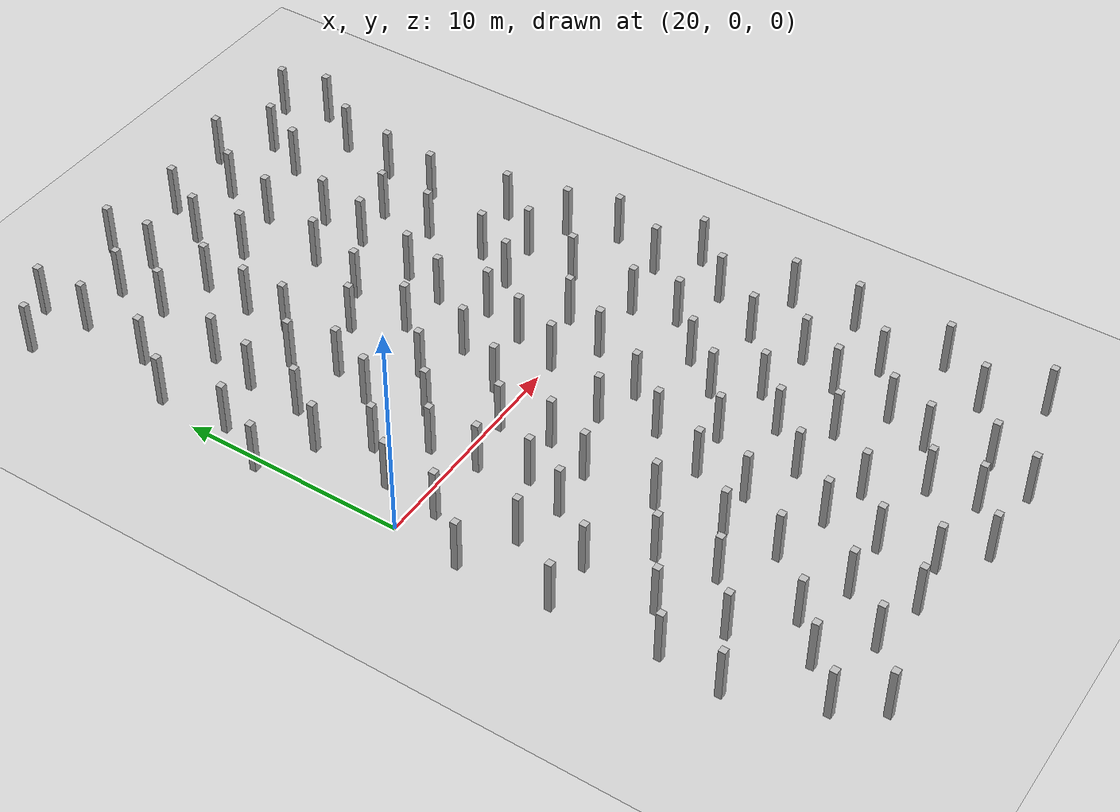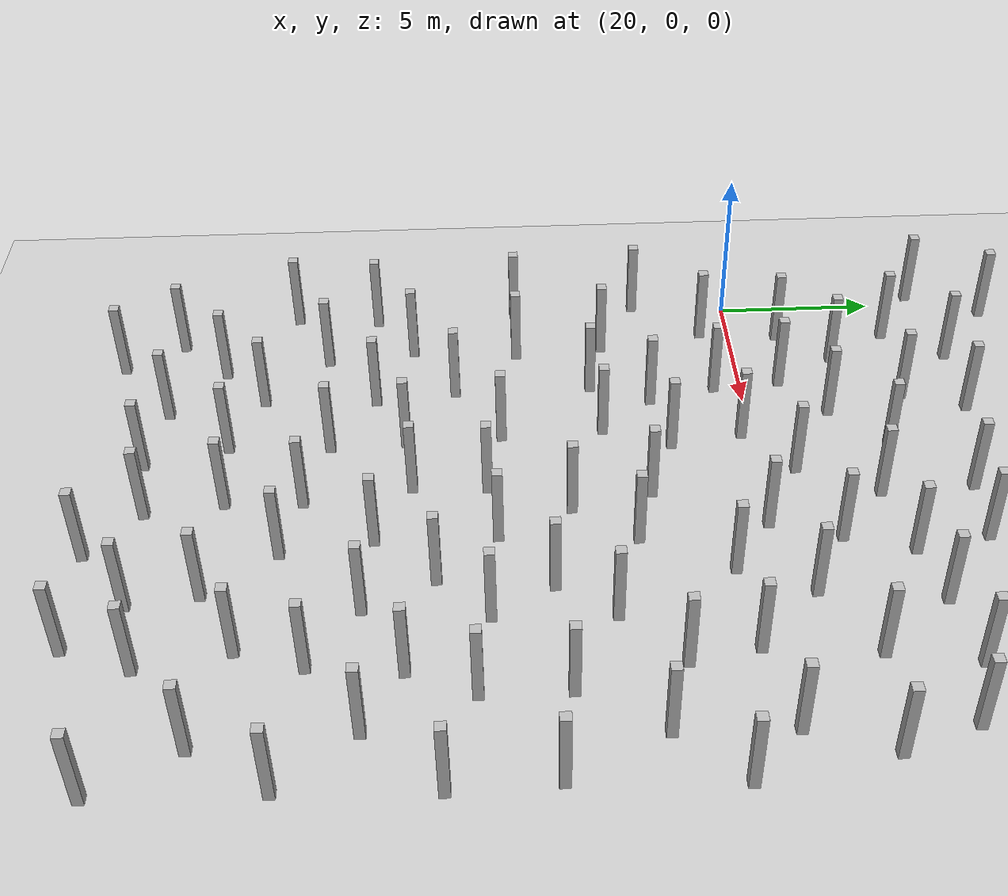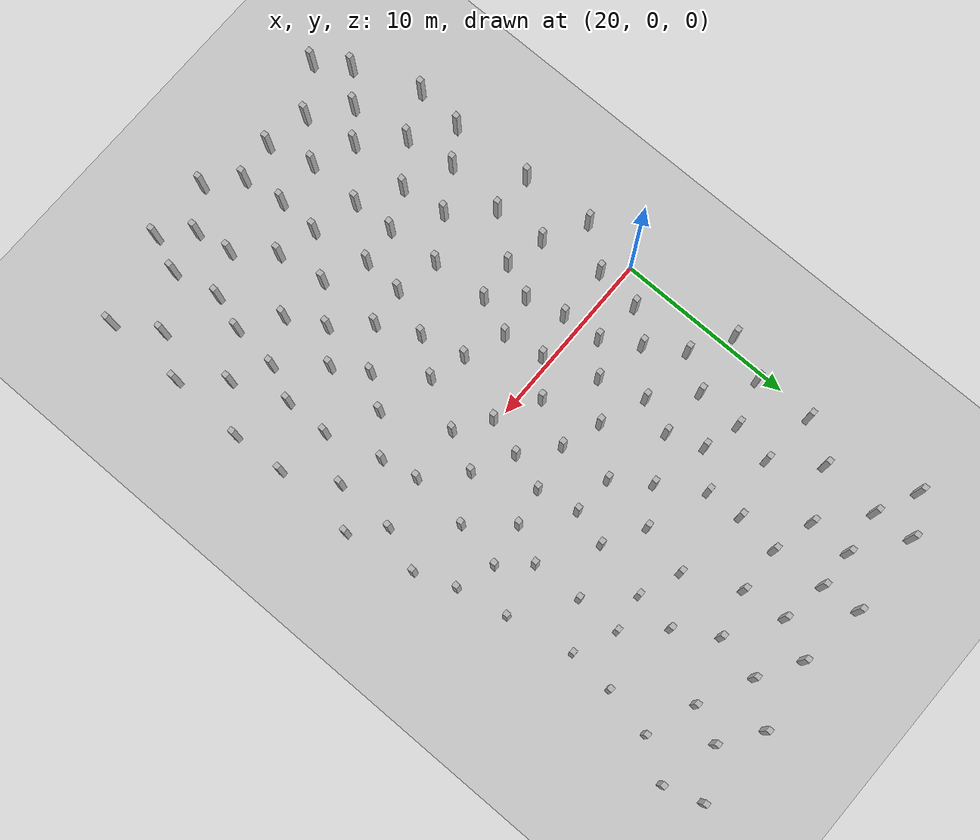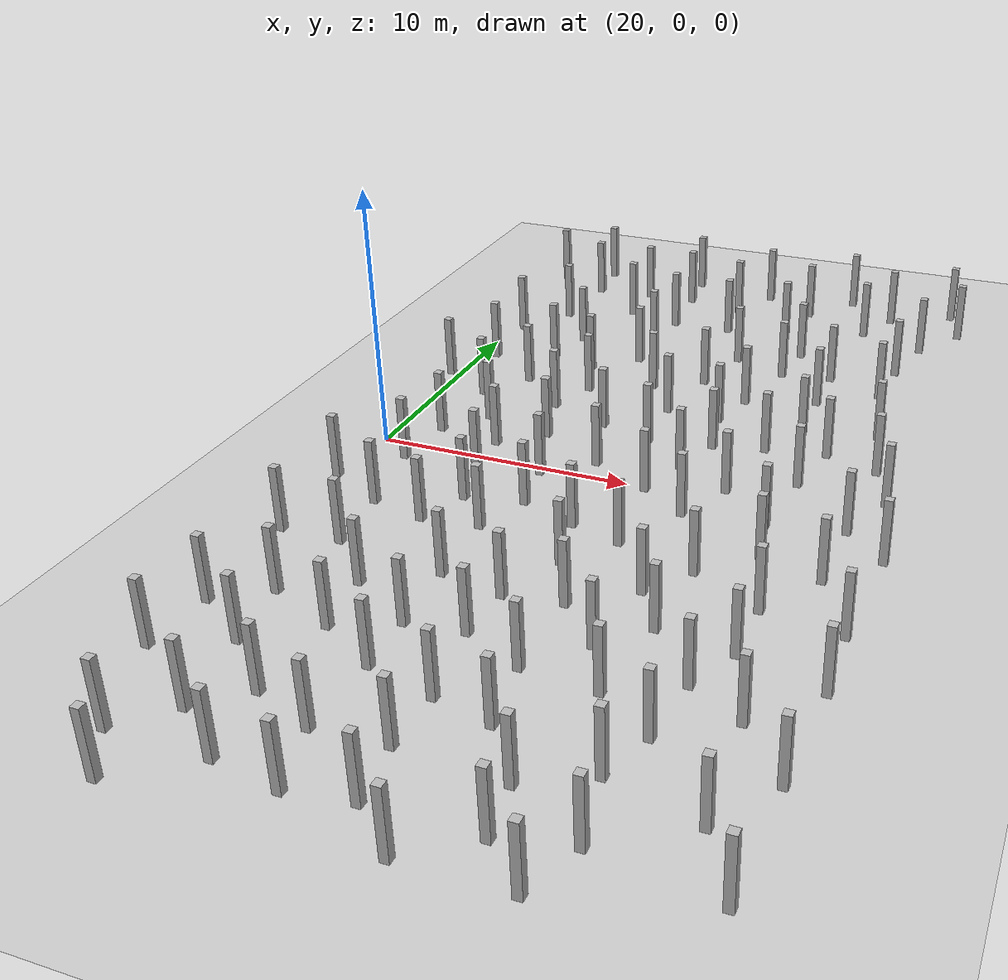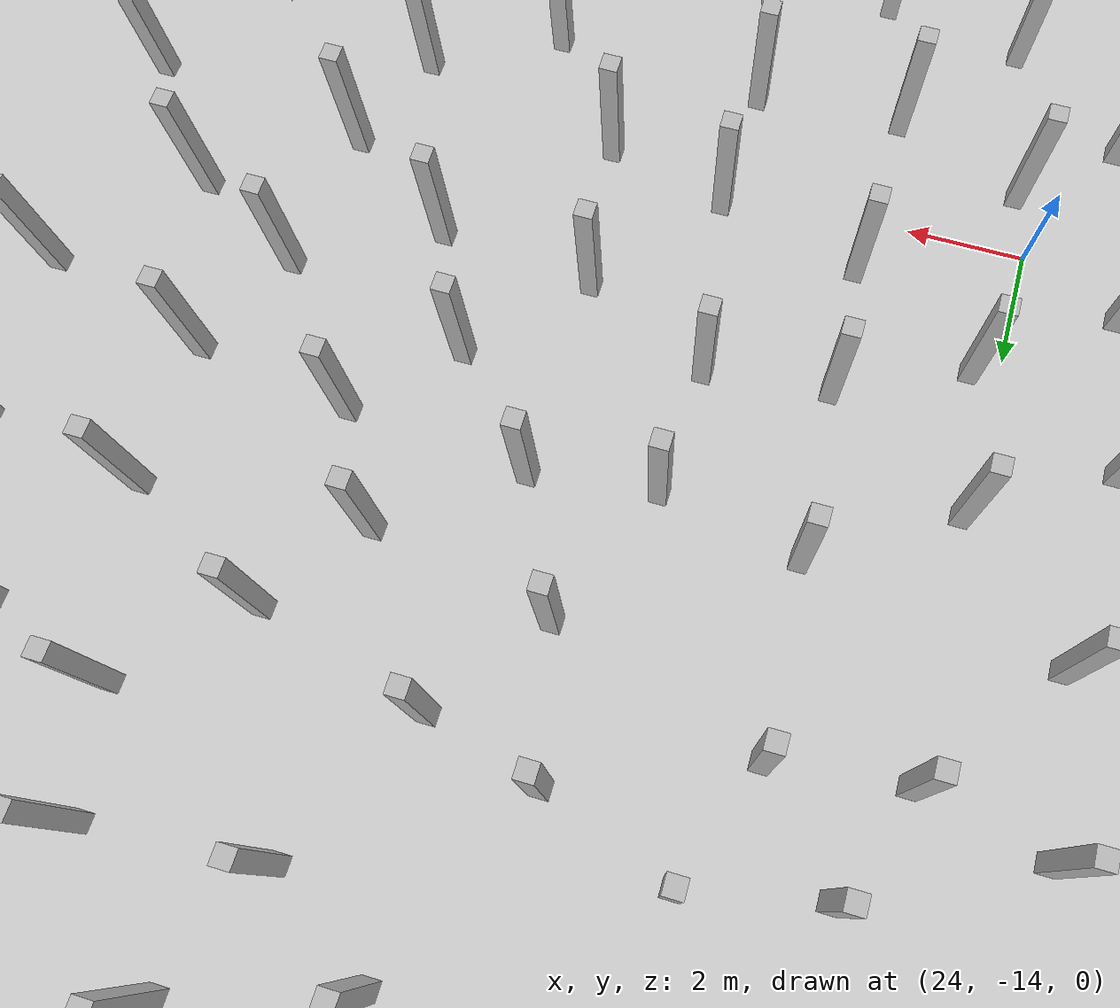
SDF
<sdf version="1.6">
 <world name="random_boxes_100x40_600">
  <include><uri>model://sun</uri></include>
  <include><uri>model://ground_plane</uri></include>
  <model name="box_0">
   <static>true</static>
   <pose>20.616 8.737 1.250 0 0 0</pose>
   <link name="link">
    <visual name="visual"><geometry><box><size>0.3 0.3 2.5</size></box></geometry></visual>
    <collision name="collision"><geometry><box><size>0.3 0.3 2.5</size></box></geometry></collision>
   </link>
  </model>
  <model name="box_1">
   <static>true</static>
   <pose>23.067 9.463 1.250 0 0 0</pose>
   <link name="link">
    <visual name="visual"><geometry><box><size>0.3 0.3 2.5</size></box></geometry></visual>
    <collision name="collision"><geometry><box><size>0.3 0.3 2.5</size></box></geometry></collision>
   </link>
  </model>
  <model name="box_2">
   <static>true</static>
   <pose>19.566 6.437 1.250 0 0 0</pose>
   <link name="link">
    <visual name="visual"><geometry><box><size>0.3 0.3 2.5</size></box></geometry></visual>
    <collision name="collision"><geometry><box><size>0.3 0.3 2.5</size></box></geometry></collision>
   </link>
  </model>
  <model name="box_3">
   <static>true</static>
   <pose>21.735 5.121 1.250 0 0 0</pose>
   <link name="link">
    <visual name="visual"><geometry><box><size>0.3 0.3 2.5</size></box></geometry></visual>
    <collision name="collision"><geometry><box><size>0.3 0.3 2.5</size></box></geometry></collision>
   </link>
  </model>
  <model name="box_4">
   <static>true</static>
   <pose>22.974 6.956 1.250 0 0 0</pose>
   <link name="link">
    <visual name="visual"><geometry><box><size>0.3 0.3 2.5</size></box></geometry></visual>
    <collision name="collision"><geometry><box><size>0.3 0.3 2.5</size></box></geometry></collision>
   </link>
  </model>
  <model name="box_5">
   <static>true</static>
   <pose>25.010 8.894 1.250 0 0 0</pose>
   <link name="link">
    <visual name="visual"><geometry><box><size>0.3 0.3 2.5</size></box></geometry></visual>
    <collision name="collision"><geometry><box><size>0.3 0.3 2.5</size></box></geometry></collision>
   </link>
  </model>
  <model name="box_7">
   <static>true</static>
   <pose>23.516 11.668 1.250 0 0 0</pose>
   <link name="link">
    <visual name="visual"><geometry><box><size>0.3 0.3 2.5</size></box></geometry></visual>
    <collision name="collision"><geometry><box><size>0.3 0.3 2.5</size></box></geometry></collision>
   </link>
  </model>
  <model name="box_8">
   <static>true</static>
   <pose>26.659 10.443 1.250 0 0 0</pose>
   <link name="link">
    <visual name="visual"><geometry><box><size>0.3 0.3 2.5</size></box></geometry></visual>
    <collision name="collision"><geometry><box><size>0.3 0.3 2.5</size></box></geometry></collision>
   </link>
  </model>
  <model name="box_11">
   <static>true</static>
   <pose>25.702 6.966 1.250 0 0 0</pose>
   <link name="link">
    <visual name="visual"><geometry><box><size>0.3 0.3 2.5</size></box></geometry></visual>
    <collision name="collision"><geometry><box><size>0.3 0.3 2.5</size></box></geometry></collision>
   </link>
  </model>
  <model name="box_12">
   <static>true</static>
   <pose>21.830 14.069 1.250 0 0 0</pose>
   <link name="link">
    <visual name="visual"><geometry><box><size>0.3 0.3 2.5</size></box></geometry></visual>
    <collision name="collision"><geometry><box><size>0.3 0.3 2.5</size></box></geometry></collision>
   </link>
  </model>
  <model name="box_17">
   <static>true</static>
   <pose>28.119 8.132 1.250 0 0 0</pose>
   <link name="link">
    <visual name="visual"><geometry><box><size>0.3 0.3 2.5</size></box></geometry></visual>
    <collision name="collision"><geometry><box><size>0.3 0.3 2.5</size></box></geometry></collision>
   </link>
  </model>
  <model name="box_18">
   <static>true</static>
   <pose>22.969 3.160 1.250 0 0 0</pose>
   <link name="link">
    <visual name="visual"><geometry><box><size>0.3 0.3 2.5</size></box></geometry></visual>
    <collision name="collision"><geometry><box><size>0.3 0.3 2.5</size></box></geometry></collision>
   </link>
  </model>
  <model name="box_19">
   <static>true</static>
   <pose>19.852 18.463 1.250 0 0 0</pose>
   <link name="link">
    <visual name="visual"><geometry><box><size>0.3 0.3 2.5</size></box></geometry></visual>
    <collision name="collision"><geometry><box><size>0.3 0.3 2.5</size></box></geometry></collision>
   </link>
  </model>
  <model name="box_20">
   <static>true</static>
   <pose>20.443 11.930 1.250 0 0 0</pose>
   <link name="link">
    <visual name="visual"><geometry><box><size>0.3 0.3 2.5</size></box></geometry></visual>
    <collision name="collision"><geometry><box><size>0.3 0.3 2.5</size></box></geometry></collision>
   </link>
  </model>
  <model name="box_21">
   <static>true</static>
   <pose>24.533 15.338 1.250 0 0 0</pose>
   <link name="link">
    <visual name="visual"><geometry><box><size>0.3 0.3 2.5</size></box></geometry></visual>
    <collision name="collision"><geometry><box><size>0.3 0.3 2.5</size></box></geometry></collision>
   </link>
  </model>
  <model name="box_22">
   <static>true</static>
   <pose>26.589 12.455 1.250 0 0 0</pose>
   <link name="link">
    <visual name="visual"><geometry><box><size>0.3 0.3 2.5</size></box></geometry></visual>
    <collision name="collision"><geometry><box><size>0.3 0.3 2.5</size></box></geometry></collision>
   </link>
  </model>
  <model name="box_24">
   <static>true</static>
   <pose>26.821 14.765 1.250 0 0 0</pose>
   <link name="link">
    <visual name="visual"><geometry><box><size>0.3 0.3 2.5</size></box></geometry></visual>
    <collision name="collision"><geometry><box><size>0.3 0.3 2.5</size></box></geometry></collision>
   </link>
  </model>
  <model name="box_31">
   <static>true</static>
   <pose>29.321 14.858 1.250 0 0 0</pose>
   <link name="link">
    <visual name="visual"><geometry><box><size>0.3 0.3 2.5</size></box></geometry></visual>
    <collision name="collision"><geometry><box><size>0.3 0.3 2.5</size></box></geometry></collision>
   </link>
  </model>
  <model name="box_32">
   <static>true</static>
   <pose>22.106 17.415 1.250 0 0 0</pose>
   <link name="link">
    <visual name="visual"><geometry><box><size>0.3 0.3 2.5</size></box></geometry></visual>
    <collision name="collision"><geometry><box><size>0.3 0.3 2.5</size></box></geometry></collision>
   </link>
  </model>
  <model name="box_36">
   <static>true</static>
   <pose>21.923 19.605 1.250 0 0 0</pose>
   <link name="link">
    <visual name="visual"><geometry><box><size>0.3 0.3 2.5</size></box></geometry></visual>
    <collision name="collision"><geometry><box><size>0.3 0.3 2.5</size></box></geometry></collision>
   </link>
  </model>
  <model name="box_38">
   <static>true</static>
   <pose>31.835 15.458 1.250 0 0 0</pose>
   <link name="link">
    <visual name="visual"><geometry><box><size>0.3 0.3 2.5</size></box></geometry></visual>
    <collision name="collision"><geometry><box><size>0.3 0.3 2.5</size></box></geometry></collision>
   </link>
  </model>
  <model name="box_39">
   <static>true</static>
   <pose>24.149 1.246 1.250 0 0 0</pose>
   <link name="link">
    <visual name="visual"><geometry><box><size>0.3 0.3 2.5</size></box></geometry></visual>
    <collision name="collision"><geometry><box><size>0.3 0.3 2.5</size></box></geometry></collision>
   </link>
  </model>
  <model name="box_40">
   <static>true</static>
   <pose>32.335 17.937 1.250 0 0 0</pose>
   <link name="link">
    <visual name="visual"><geometry><box><size>0.3 0.3 2.5</size></box></geometry></visual>
    <collision name="collision"><geometry><box><size>0.3 0.3 2.5</size></box></geometry></collision>
   </link>
  </model>
  <model name="box_42">
   <static>true</static>
   <pose>24.341 -0.869 1.250 0 0 0</pose>
   <link name="link">
    <visual name="visual"><geometry><box><size>0.3 0.3 2.5</size></box></geometry></visual>
    <collision name="collision"><geometry><box><size>0.3 0.3 2.5</size></box></geometry></collision>
   </link>
  </model>
  <model name="box_46">
   <static>true</static>
   <pose>29.089 17.269 1.250 0 0 0</pose>
   <link name="link">
    <visual name="visual"><geometry><box><size>0.3 0.3 2.5</size></box></geometry></visual>
    <collision name="collision"><geometry><box><size>0.3 0.3 2.5</size></box></geometry></collision>
   </link>
  </model>
  <model name="box_49">
   <static>true</static>
   <pose>24.993 5.047 1.250 0 0 0</pose>
   <link name="link">
    <visual name="visual"><geometry><box><size>0.3 0.3 2.5</size></box></geometry></visual>
    <collision name="collision"><geometry><box><size>0.3 0.3 2.5</size></box></geometry></collision>
   </link>
  </model>
  <model name="box_50">
   <static>true</static>
   <pose>21.379 -0.948 1.250 0 0 0</pose>
   <link name="link">
    <visual name="visual"><geometry><box><size>0.3 0.3 2.5</size></box></geometry></visual>
    <collision name="collision"><geometry><box><size>0.3 0.3 2.5</size></box></geometry></collision>
   </link>
  </model>
  <model name="box_53">
   <static>true</static>
   <pose>33.130 13.301 1.250 0 0 0</pose>
   <link name="link">
    <visual name="visual"><geometry><box><size>0.3 0.3 2.5</size></box></geometry></visual>
    <collision name="collision"><geometry><box><size>0.3 0.3 2.5</size></box></geometry></collision>
   </link>
  </model>
  <model name="box_54">
   <static>true</static>
   <pose>30.680 11.943 1.250 0 0 0</pose>
   <link name="link">
    <visual name="visual"><geometry><box><size>0.3 0.3 2.5</size></box></geometry></visual>
    <collision name="collision"><geometry><box><size>0.3 0.3 2.5</size></box></geometry></collision>
   </link>
  </model>
  <model name="box_56">
   <static>true</static>
   <pose>30.006 9.267 1.250 0 0 0</pose>
   <link name="link">
    <visual name="visual"><geometry><box><size>0.3 0.3 2.5</size></box></geometry></visual>
    <collision name="collision"><geometry><box><size>0.3 0.3 2.5</size></box></geometry></collision>
   </link>
  </model>
  <model name="box_69">
   <static>true</static>
   <pose>32.147 8.051 1.250 0 0 0</pose>
   <link name="link">
    <visual name="visual"><geometry><box><size>0.3 0.3 2.5</size></box></geometry></visual>
    <collision name="collision"><geometry><box><size>0.3 0.3 2.5</size></box></geometry></collision>
   </link>
  </model>
  <model name="box_73">
   <static>true</static>
   <pose>34.911 11.383 1.250 0 0 0</pose>
   <link name="link">
    <visual name="visual"><geometry><box><size>0.3 0.3 2.5</size></box></geometry></visual>
    <collision name="collision"><geometry><box><size>0.3 0.3 2.5</size></box></geometry></collision>
   </link>
  </model>
  <model name="box_77">
   <static>true</static>
   <pose>26.706 -0.330 1.250 0 0 0</pose>
   <link name="link">
    <visual name="visual"><geometry><box><size>0.3 0.3 2.5</size></box></geometry></visual>
    <collision name="collision"><geometry><box><size>0.3 0.3 2.5</size></box></geometry></collision>
   </link>
  </model>
  <model name="box_81">
   <static>true</static>
   <pose>28.405 1.069 1.250 0 0 0</pose>
   <link name="link">
    <visual name="visual"><geometry><box><size>0.3 0.3 2.5</size></box></geometry></visual>
    <collision name="collision"><geometry><box><size>0.3 0.3 2.5</size></box></geometry></collision>
   </link>
  </model>
  <model name="box_84">
   <static>true</static>
   <pose>34.910 8.945 1.250 0 0 0</pose>
   <link name="link">
    <visual name="visual"><geometry><box><size>0.3 0.3 2.5</size></box></geometry></visual>
    <collision name="collision"><geometry><box><size>0.3 0.3 2.5</size></box></geometry></collision>
   </link>
  </model>
  <model name="box_89">
   <static>true</static>
   <pose>27.470 4.108 1.250 0 0 0</pose>
   <link name="link">
    <visual name="visual"><geometry><box><size>0.3 0.3 2.5</size></box></geometry></visual>
    <collision name="collision"><geometry><box><size>0.3 0.3 2.5</size></box></geometry></collision>
   </link>
  </model>
  <model name="box_90">
   <static>true</static>
   <pose>32.875 11.088 1.250 0 0 0</pose>
   <link name="link">
    <visual name="visual"><geometry><box><size>0.3 0.3 2.5</size></box></geometry></visual>
    <collision name="collision"><geometry><box><size>0.3 0.3 2.5</size></box></geometry></collision>
   </link>
  </model>
  <model name="box_91">
   <static>true</static>
   <pose>35.016 6.193 1.250 0 0 0</pose>
   <link name="link">
    <visual name="visual"><geometry><box><size>0.3 0.3 2.5</size></box></geometry></visual>
    <collision name="collision"><geometry><box><size>0.3 0.3 2.5</size></box></geometry></collision>
   </link>
  </model>
  <model name="box_93">
   <static>true</static>
   <pose>37.881 6.780 1.250 0 0 0</pose>
   <link name="link">
    <visual name="visual"><geometry><box><size>0.3 0.3 2.5</size></box></geometry></visual>
    <collision name="collision"><geometry><box><size>0.3 0.3 2.5</size></box></geometry></collision>
   </link>
  </model>
  <model name="box_94">
   <static>true</static>
   <pose>29.433 6.229 1.250 0 0 0</pose>
   <link name="link">
    <visual name="visual"><geometry><box><size>0.3 0.3 2.5</size></box></geometry></visual>
    <collision name="collision"><geometry><box><size>0.3 0.3 2.5</size></box></geometry></collision>
   </link>
  </model>
  <model name="box_97">
   <static>true</static>
   <pose>27.077 -2.532 1.250 0 0 0</pose>
   <link name="link">
    <visual name="visual"><geometry><box><size>0.3 0.3 2.5</size></box></geometry></visual>
    <collision name="collision"><geometry><box><size>0.3 0.3 2.5</size></box></geometry></collision>
   </link>
  </model>
  <model name="box_100">
   <static>true</static>
   <pose>26.641 17.713 1.250 0 0 0</pose>
   <link name="link">
    <visual name="visual"><geometry><box><size>0.3 0.3 2.5</size></box></geometry></visual>
    <collision name="collision"><geometry><box><size>0.3 0.3 2.5</size></box></geometry></collision>
   </link>
  </model>
  <model name="box_102">
   <static>true</static>
   <pose>33.962 19.959 1.250 0 0 0</pose>
   <link name="link">
    <visual name="visual"><geometry><box><size>0.3 0.3 2.5</size></box></geometry></visual>
    <collision name="collision"><geometry><box><size>0.3 0.3 2.5</size></box></geometry></collision>
   </link>
  </model>
  <model name="box_104">
   <static>true</static>
   <pose>29.586 3.407 1.250 0 0 0</pose>
   <link name="link">
    <visual name="visual"><geometry><box><size>0.3 0.3 2.5</size></box></geometry></visual>
    <collision name="collision"><geometry><box><size>0.3 0.3 2.5</size></box></geometry></collision>
   </link>
  </model>
  <model name="box_107">
   <static>true</static>
   <pose>37.163 10.414 1.250 0 0 0</pose>
   <link name="link">
    <visual name="visual"><geometry><box><size>0.3 0.3 2.5</size></box></geometry></visual>
    <collision name="collision"><geometry><box><size>0.3 0.3 2.5</size></box></geometry></collision>
   </link>
  </model>
  <model name="box_109">
   <static>true</static>
   <pose>38.416 4.005 1.250 0 0 0</pose>
   <link name="link">
    <visual name="visual"><geometry><box><size>0.3 0.3 2.5</size></box></geometry></visual>
    <collision name="collision"><geometry><box><size>0.3 0.3 2.5</size></box></geometry></collision>
   </link>
  </model>
  <model name="box_113">
   <static>true</static>
   <pose>30.771 -0.128 1.250 0 0 0</pose>
   <link name="link">
    <visual name="visual"><geometry><box><size>0.3 0.3 2.5</size></box></geometry></visual>
    <collision name="collision"><geometry><box><size>0.3 0.3 2.5</size></box></geometry></collision>
   </link>
  </model>
  <model name="box_118">
   <static>true</static>
   <pose>32.072 3.877 1.250 0 0 0</pose>
   <link name="link">
    <visual name="visual"><geometry><box><size>0.3 0.3 2.5</size></box></geometry></visual>
    <collision name="collision"><geometry><box><size>0.3 0.3 2.5</size></box></geometry></collision>
   </link>
  </model>
  <model name="box_119">
   <static>true</static>
   <pose>20.149 -11.694 1.250 0 0 0</pose>
   <link name="link">
    <visual name="visual"><geometry><box><size>0.3 0.3 2.5</size></box></geometry></visual>
    <collision name="collision"><geometry><box><size>0.3 0.3 2.5</size></box></geometry></collision>
   </link>
  </model>
  <model name="box_124">
   <static>true</static>
   <pose>33.573 0.771 1.250 0 0 0</pose>
   <link name="link">
    <visual name="visual"><geometry><box><size>0.3 0.3 2.5</size></box></geometry></visual>
    <collision name="collision"><geometry><box><size>0.3 0.3 2.5</size></box></geometry></collision>
   </link>
  </model>
  <model name="box_126">
   <static>true</static>
   <pose>37.349 12.912 1.250 0 0 0</pose>
   <link name="link">
    <visual name="visual"><geometry><box><size>0.3 0.3 2.5</size></box></geometry></visual>
    <collision name="collision"><geometry><box><size>0.3 0.3 2.5</size></box></geometry></collision>
   </link>
  </model>
  <model name="box_132">
   <static>true</static>
   <pose>37.889 15.621 1.250 0 0 0</pose>
   <link name="link">
    <visual name="visual"><geometry><box><size>0.3 0.3 2.5</size></box></geometry></visual>
    <collision name="collision"><geometry><box><size>0.3 0.3 2.5</size></box></geometry></collision>
   </link>
  </model>
  <model name="box_140">
   <static>true</static>
   <pose>35.896 2.123 1.250 0 0 0</pose>
   <link name="link">
    <visual name="visual"><geometry><box><size>0.3 0.3 2.5</size></box></geometry></visual>
    <collision name="collision"><geometry><box><size>0.3 0.3 2.5</size></box></geometry></collision>
   </link>
  </model>
  <model name="box_145">
   <static>true</static>
   <pose>35.193 16.567 1.250 0 0 0</pose>
   <link name="link">
    <visual name="visual"><geometry><box><size>0.3 0.3 2.5</size></box></geometry></visual>
    <collision name="collision"><geometry><box><size>0.3 0.3 2.5</size></box></geometry></collision>
   </link>
  </model>
  <model name="box_150">
   <static>true</static>
   <pose>31.610 6.099 1.250 0 0 0</pose>
   <link name="link">
    <visual name="visual"><geometry><box><size>0.3 0.3 2.5</size></box></geometry></visual>
    <collision name="collision"><geometry><box><size>0.3 0.3 2.5</size></box></geometry></collision>
   </link>
  </model>
  <model name="box_154">
   <static>true</static>
   <pose>26.292 -4.584 1.250 0 0 0</pose>
   <link name="link">
    <visual name="visual"><geometry><box><size>0.3 0.3 2.5</size></box></geometry></visual>
    <collision name="collision"><geometry><box><size>0.3 0.3 2.5</size></box></geometry></collision>
   </link>
  </model>
  <model name="box_156">
   <static>true</static>
   <pose>39.220 17.744 1.250 0 0 0</pose>
   <link name="link">
    <visual name="visual"><geometry><box><size>0.3 0.3 2.5</size></box></geometry></visual>
    <collision name="collision"><geometry><box><size>0.3 0.3 2.5</size></box></geometry></collision>
   </link>
  </model>
  <model name="box_161">
   <static>true</static>
   <pose>19.896 -14.367 1.250 0 0 0</pose>
   <link name="link">
    <visual name="visual"><geometry><box><size>0.3 0.3 2.5</size></box></geometry></visual>
    <collision name="collision"><geometry><box><size>0.3 0.3 2.5</size></box></geometry></collision>
   </link>
  </model>
  <model name="box_162">
   <static>true</static>
   <pose>21.645 1.568 1.250 0 0 0</pose>
   <link name="link">
    <visual name="visual"><geometry><box><size>0.3 0.3 2.5</size></box></geometry></visual>
    <collision name="collision"><geometry><box><size>0.3 0.3 2.5</size></box></geometry></collision>
   </link>
  </model>
  <model name="box_163">
   <static>true</static>
   <pose>29.272 -3.357 1.250 0 0 0</pose>
   <link name="link">
    <visual name="visual"><geometry><box><size>0.3 0.3 2.5</size></box></geometry></visual>
    <collision name="collision"><geometry><box><size>0.3 0.3 2.5</size></box></geometry></collision>
   </link>
  </model>
  <model name="box_168">
   <static>true</static>
   <pose>19.723 -3.090 1.250 0 0 0</pose>
   <link name="link">
    <visual name="visual"><geometry><box><size>0.3 0.3 2.5</size></box></geometry></visual>
    <collision name="collision"><geometry><box><size>0.3 0.3 2.5</size></box></geometry></collision>
   </link>
  </model>
  <model name="box_174">
   <static>true</static>
   <pose>39.207 1.836 1.250 0 0 0</pose>
   <link name="link">
    <visual name="visual"><geometry><box><size>0.3 0.3 2.5</size></box></geometry></visual>
    <collision name="collision"><geometry><box><size>0.3 0.3 2.5</size></box></geometry></collision>
   </link>
  </model>
  <model name="box_175">
   <static>true</static>
   <pose>36.367 4.686 1.250 0 0 0</pose>
   <link name="link">
    <visual name="visual"><geometry><box><size>0.3 0.3 2.5</size></box></geometry></visual>
    <collision name="collision"><geometry><box><size>0.3 0.3 2.5</size></box></geometry></collision>
   </link>
  </model>
  <model name="box_177">
   <static>true</static>
   <pose>21.999 -4.325 1.250 0 0 0</pose>
   <link name="link">
    <visual name="visual"><geometry><box><size>0.3 0.3 2.5</size></box></geometry></visual>
    <collision name="collision"><geometry><box><size>0.3 0.3 2.5</size></box></geometry></collision>
   </link>
  </model>
  <model name="box_180">
   <static>true</static>
   <pose>22.332 -13.213 1.250 0 0 0</pose>
   <link name="link">
    <visual name="visual"><geometry><box><size>0.3 0.3 2.5</size></box></geometry></visual>
    <collision name="collision"><geometry><box><size>0.3 0.3 2.5</size></box></geometry></collision>
   </link>
  </model>
  <model name="box_182">
   <static>true</static>
   <pose>38.330 -0.523 1.250 0 0 0</pose>
   <link name="link">
    <visual name="visual"><geometry><box><size>0.3 0.3 2.5</size></box></geometry></visual>
    <collision name="collision"><geometry><box><size>0.3 0.3 2.5</size></box></geometry></collision>
   </link>
  </model>
  <model name="box_183">
   <static>true</static>
   <pose>36.052 18.489 1.250 0 0 0</pose>
   <link name="link">
    <visual name="visual"><geometry><box><size>0.3 0.3 2.5</size></box></geometry></visual>
    <collision name="collision"><geometry><box><size>0.3 0.3 2.5</size></box></geometry></collision>
   </link>
  </model>
  <model name="box_185">
   <static>true</static>
   <pose>24.543 17.644 1.250 0 0 0</pose>
   <link name="link">
    <visual name="visual"><geometry><box><size>0.3 0.3 2.5</size></box></geometry></visual>
    <collision name="collision"><geometry><box><size>0.3 0.3 2.5</size></box></geometry></collision>
   </link>
  </model>
  <model name="box_187">
   <static>true</static>
   <pose>24.352 -15.121 1.250 0 0 0</pose>
   <link name="link">
    <visual name="visual"><geometry><box><size>0.3 0.3 2.5</size></box></geometry></visual>
    <collision name="collision"><geometry><box><size>0.3 0.3 2.5</size></box></geometry></collision>
   </link>
  </model>
  <model name="box_189">
   <static>true</static>
   <pose>19.935 -7.115 1.250 0 0 0</pose>
   <link name="link">
    <visual name="visual"><geometry><box><size>0.3 0.3 2.5</size></box></geometry></visual>
    <collision name="collision"><geometry><box><size>0.3 0.3 2.5</size></box></geometry></collision>
   </link>
  </model>
  <model name="box_192">
   <static>true</static>
   <pose>29.847 -5.750 1.250 0 0 0</pose>
   <link name="link">
    <visual name="visual"><geometry><box><size>0.3 0.3 2.5</size></box></geometry></visual>
    <collision name="collision"><geometry><box><size>0.3 0.3 2.5</size></box></geometry></collision>
   </link>
  </model>
  <model name="box_194">
   <static>true</static>
   <pose>39.906 -1.976 1.250 0 0 0</pose>
   <link name="link">
    <visual name="visual"><geometry><box><size>0.3 0.3 2.5</size></box></geometry></visual>
    <collision name="collision"><geometry><box><size>0.3 0.3 2.5</size></box></geometry></collision>
   </link>
  </model>
  <model name="box_196">
   <static>true</static>
   <pose>22.817 -16.486 1.250 0 0 0</pose>
   <link name="link">
    <visual name="visual"><geometry><box><size>0.3 0.3 2.5</size></box></geometry></visual>
    <collision name="collision"><geometry><box><size>0.3 0.3 2.5</size></box></geometry></collision>
   </link>
  </model>
  <model name="box_199">
   <static>true</static>
   <pose>21.255 -18.019 1.250 0 0 0</pose>
   <link name="link">
    <visual name="visual"><geometry><box><size>0.3 0.3 2.5</size></box></geometry></visual>
    <collision name="collision"><geometry><box><size>0.3 0.3 2.5</size></box></geometry></collision>
   </link>
  </model>
  <model name="box_204">
   <static>true</static>
   <pose>30.935 -7.922 1.250 0 0 0</pose>
   <link name="link">
    <visual name="visual"><geometry><box><size>0.3 0.3 2.5</size></box></geometry></visual>
    <collision name="collision"><geometry><box><size>0.3 0.3 2.5</size></box></geometry></collision>
   </link>
  </model>
  <model name="box_205">
   <static>true</static>
   <pose>38.255 -3.784 1.250 0 0 0</pose>
   <link name="link">
    <visual name="visual"><geometry><box><size>0.3 0.3 2.5</size></box></geometry></visual>
    <collision name="collision"><geometry><box><size>0.3 0.3 2.5</size></box></geometry></collision>
   </link>
  </model>
  <model name="box_210">
   <static>true</static>
   <pose>24.506 -11.611 1.250 0 0 0</pose>
   <link name="link">
    <visual name="visual"><geometry><box><size>0.3 0.3 2.5</size></box></geometry></visual>
    <collision name="collision"><geometry><box><size>0.3 0.3 2.5</size></box></geometry></collision>
   </link>
  </model>
  <model name="box_211">
   <static>true</static>
   <pose>22.254 -7.123 1.250 0 0 0</pose>
   <link name="link">
    <visual name="visual"><geometry><box><size>0.3 0.3 2.5</size></box></geometry></visual>
    <collision name="collision"><geometry><box><size>0.3 0.3 2.5</size></box></geometry></collision>
   </link>
  </model>
  <model name="box_213">
   <static>true</static>
   <pose>36.804 -6.117 1.250 0 0 0</pose>
   <link name="link">
    <visual name="visual"><geometry><box><size>0.3 0.3 2.5</size></box></geometry></visual>
    <collision name="collision"><geometry><box><size>0.3 0.3 2.5</size></box></geometry></collision>
   </link>
  </model>
  <model name="box_214">
   <static>true</static>
   <pose>26.596 -16.030 1.250 0 0 0</pose>
   <link name="link">
    <visual name="visual"><geometry><box><size>0.3 0.3 2.5</size></box></geometry></visual>
    <collision name="collision"><geometry><box><size>0.3 0.3 2.5</size></box></geometry></collision>
   </link>
  </model>
  <model name="box_216">
   <static>true</static>
   <pose>38.584 19.819 1.250 0 0 0</pose>
   <link name="link">
    <visual name="visual"><geometry><box><size>0.3 0.3 2.5</size></box></geometry></visual>
    <collision name="collision"><geometry><box><size>0.3 0.3 2.5</size></box></geometry></collision>
   </link>
  </model>
  <model name="box_225">
   <static>true</static>
   <pose>35.963 -3.073 1.250 0 0 0</pose>
   <link name="link">
    <visual name="visual"><geometry><box><size>0.3 0.3 2.5</size></box></geometry></visual>
    <collision name="collision"><geometry><box><size>0.3 0.3 2.5</size></box></geometry></collision>
   </link>
  </model>
  <model name="box_226">
   <static>true</static>
   <pose>26.723 -12.938 1.250 0 0 0</pose>
   <link name="link">
    <visual name="visual"><geometry><box><size>0.3 0.3 2.5</size></box></geometry></visual>
    <collision name="collision"><geometry><box><size>0.3 0.3 2.5</size></box></geometry></collision>
   </link>
  </model>
  <model name="box_230">
   <static>true</static>
   <pose>26.630 -10.632 1.250 0 0 0</pose>
   <link name="link">
    <visual name="visual"><geometry><box><size>0.3 0.3 2.5</size></box></geometry></visual>
    <collision name="collision"><geometry><box><size>0.3 0.3 2.5</size></box></geometry></collision>
   </link>
  </model>
  <model name="box_231">
   <static>true</static>
   <pose>27.281 -18.507 1.250 0 0 0</pose>
   <link name="link">
    <visual name="visual"><geometry><box><size>0.3 0.3 2.5</size></box></geometry></visual>
    <collision name="collision"><geometry><box><size>0.3 0.3 2.5</size></box></geometry></collision>
   </link>
  </model>
  <model name="box_233">
   <static>true</static>
   <pose>32.984 -6.409 1.250 0 0 0</pose>
   <link name="link">
    <visual name="visual"><geometry><box><size>0.3 0.3 2.5</size></box></geometry></visual>
    <collision name="collision"><geometry><box><size>0.3 0.3 2.5</size></box></geometry></collision>
   </link>
  </model>
  <model name="box_238">
   <static>true</static>
   <pose>31.216 -3.918 1.250 0 0 0</pose>
   <link name="link">
    <visual name="visual"><geometry><box><size>0.3 0.3 2.5</size></box></geometry></visual>
    <collision name="collision"><geometry><box><size>0.3 0.3 2.5</size></box></geometry></collision>
   </link>
  </model>
  <model name="box_240">
   <static>true</static>
   <pose>21.927 -10.469 1.250 0 0 0</pose>
   <link name="link">
    <visual name="visual"><geometry><box><size>0.3 0.3 2.5</size></box></geometry></visual>
    <collision name="collision"><geometry><box><size>0.3 0.3 2.5</size></box></geometry></collision>
   </link>
  </model>
  <model name="box_248">
   <static>true</static>
   <pose>32.580 -1.328 1.250 0 0 0</pose>
   <link name="link">
    <visual name="visual"><geometry><box><size>0.3 0.3 2.5</size></box></geometry></visual>
    <collision name="collision"><geometry><box><size>0.3 0.3 2.5</size></box></geometry></collision>
   </link>
  </model>
  <model name="box_250">
   <static>true</static>
   <pose>34.067 -8.198 1.250 0 0 0</pose>
   <link name="link">
    <visual name="visual"><geometry><box><size>0.3 0.3 2.5</size></box></geometry></visual>
    <collision name="collision"><geometry><box><size>0.3 0.3 2.5</size></box></geometry></collision>
   </link>
  </model>
  <model name="box_251">
   <static>true</static>
   <pose>39.675 -6.537 1.250 0 0 0</pose>
   <link name="link">
    <visual name="visual"><geometry><box><size>0.3 0.3 2.5</size></box></geometry></visual>
    <collision name="collision"><geometry><box><size>0.3 0.3 2.5</size></box></geometry></collision>
   </link>
  </model>
  <model name="box_252">
   <static>true</static>
   <pose>28.717 -10.404 1.250 0 0 0</pose>
   <link name="link">
    <visual name="visual"><geometry><box><size>0.3 0.3 2.5</size></box></geometry></visual>
    <collision name="collision"><geometry><box><size>0.3 0.3 2.5</size></box></geometry></collision>
   </link>
  </model>
  <model name="box_254">
   <static>true</static>
   <pose>26.457 19.814 1.250 0 0 0</pose>
   <link name="link">
    <visual name="visual"><geometry><box><size>0.3 0.3 2.5</size></box></geometry></visual>
    <collision name="collision"><geometry><box><size>0.3 0.3 2.5</size></box></geometry></collision>
   </link>
  </model>
  <model name="box_256">
   <static>true</static>
   <pose>36.793 -8.590 1.250 0 0 0</pose>
   <link name="link">
    <visual name="visual"><geometry><box><size>0.3 0.3 2.5</size></box></geometry></visual>
    <collision name="collision"><geometry><box><size>0.3 0.3 2.5</size></box></geometry></collision>
   </link>
  </model>
  <model name="box_258">
   <static>true</static>
   <pose>29.467 -18.176 1.250 0 0 0</pose>
   <link name="link">
    <visual name="visual"><geometry><box><size>0.3 0.3 2.5</size></box></geometry></visual>
    <collision name="collision"><geometry><box><size>0.3 0.3 2.5</size></box></geometry></collision>
   </link>
  </model>
  <model name="box_259">
   <static>true</static>
   <pose>30.945 -11.455 1.250 0 0 0</pose>
   <link name="link">
    <visual name="visual"><geometry><box><size>0.3 0.3 2.5</size></box></geometry></visual>
    <collision name="collision"><geometry><box><size>0.3 0.3 2.5</size></box></geometry></collision>
   </link>
  </model>
  <model name="box_263">
   <static>true</static>
   <pose>31.130 -19.646 1.250 0 0 0</pose>
   <link name="link">
    <visual name="visual"><geometry><box><size>0.3 0.3 2.5</size></box></geometry></visual>
    <collision name="collision"><geometry><box><size>0.3 0.3 2.5</size></box></geometry></collision>
   </link>
  </model>
  <model name="box_267">
   <static>true</static>
   <pose>33.642 -11.712 1.250 0 0 0</pose>
   <link name="link">
    <visual name="visual"><geometry><box><size>0.3 0.3 2.5</size></box></geometry></visual>
    <collision name="collision"><geometry><box><size>0.3 0.3 2.5</size></box></geometry></collision>
   </link>
  </model>
  <model name="box_268">
   <static>true</static>
   <pose>26.450 -7.715 1.250 0 0 0</pose>
   <link name="link">
    <visual name="visual"><geometry><box><size>0.3 0.3 2.5</size></box></geometry></visual>
    <collision name="collision"><geometry><box><size>0.3 0.3 2.5</size></box></geometry></collision>
   </link>
  </model>
  <model name="box_269">
   <static>true</static>
   <pose>34.046 4.296 1.250 0 0 0</pose>
   <link name="link">
    <visual name="visual"><geometry><box><size>0.3 0.3 2.5</size></box></geometry></visual>
    <collision name="collision"><geometry><box><size>0.3 0.3 2.5</size></box></geometry></collision>
   </link>
  </model>
  <model name="box_270">
   <static>true</static>
   <pose>31.337 -14.118 1.250 0 0 0</pose>
   <link name="link">
    <visual name="visual"><geometry><box><size>0.3 0.3 2.5</size></box></geometry></visual>
    <collision name="collision"><geometry><box><size>0.3 0.3 2.5</size></box></geometry></collision>
   </link>
  </model>
  <model name="box_283">
   <static>true</static>
   <pose>24.882 -2.966 1.250 0 0 0</pose>
   <link name="link">
    <visual name="visual"><geometry><box><size>0.3 0.3 2.5</size></box></geometry></visual>
    <collision name="collision"><geometry><box><size>0.3 0.3 2.5</size></box></geometry></collision>
   </link>
  </model>
  <model name="box_289">
   <static>true</static>
   <pose>30.103 19.278 1.250 0 0 0</pose>
   <link name="link">
    <visual name="visual"><geometry><box><size>0.3 0.3 2.5</size></box></geometry></visual>
    <collision name="collision"><geometry><box><size>0.3 0.3 2.5</size></box></geometry></collision>
   </link>
  </model>
  <model name="box_292">
   <static>true</static>
   <pose>35.556 -1.090 1.250 0 0 0</pose>
   <link name="link">
    <visual name="visual"><geometry><box><size>0.3 0.3 2.5</size></box></geometry></visual>
    <collision name="collision"><geometry><box><size>0.3 0.3 2.5</size></box></geometry></collision>
   </link>
  </model>
  <model name="box_293">
   <static>true</static>
   <pose>34.189 -4.763 1.250 0 0 0</pose>
   <link name="link">
    <visual name="visual"><geometry><box><size>0.3 0.3 2.5</size></box></geometry></visual>
    <collision name="collision"><geometry><box><size>0.3 0.3 2.5</size></box></geometry></collision>
   </link>
  </model>
  <model name="box_305">
   <static>true</static>
   <pose>35.667 -13.091 1.250 0 0 0</pose>
   <link name="link">
    <visual name="visual"><geometry><box><size>0.3 0.3 2.5</size></box></geometry></visual>
    <collision name="collision"><geometry><box><size>0.3 0.3 2.5</size></box></geometry></collision>
   </link>
  </model>
  <model name="box_308">
   <static>true</static>
   <pose>33.179 -18.154 1.250 0 0 0</pose>
   <link name="link">
    <visual name="visual"><geometry><box><size>0.3 0.3 2.5</size></box></geometry></visual>
    <collision name="collision"><geometry><box><size>0.3 0.3 2.5</size></box></geometry></collision>
   </link>
  </model>
  <model name="box_313">
   <static>true</static>
   <pose>37.901 -11.561 1.250 0 0 0</pose>
   <link name="link">
    <visual name="visual"><geometry><box><size>0.3 0.3 2.5</size></box></geometry></visual>
    <collision name="collision"><geometry><box><size>0.3 0.3 2.5</size></box></geometry></collision>
   </link>
  </model>
  <model name="box_314">
   <static>true</static>
   <pose>35.014 -15.005 1.250 0 0 0</pose>
   <link name="link">
    <visual name="visual"><geometry><box><size>0.3 0.3 2.5</size></box></geometry></visual>
    <collision name="collision"><geometry><box><size>0.3 0.3 2.5</size></box></geometry></collision>
   </link>
  </model>
  <model name="box_319">
   <static>true</static>
   <pose>24.840 -18.067 1.250 0 0 0</pose>
   <link name="link">
    <visual name="visual"><geometry><box><size>0.3 0.3 2.5</size></box></geometry></visual>
    <collision name="collision"><geometry><box><size>0.3 0.3 2.5</size></box></geometry></collision>
   </link>
  </model>
  <model name="box_322">
   <static>true</static>
   <pose>24.176 -9.121 1.250 0 0 0</pose>
   <link name="link">
    <visual name="visual"><geometry><box><size>0.3 0.3 2.5</size></box></geometry></visual>
    <collision name="collision"><geometry><box><size>0.3 0.3 2.5</size></box></geometry></collision>
   </link>
  </model>
  <model name="box_323">
   <static>true</static>
   <pose>32.881 -16.139 1.250 0 0 0</pose>
   <link name="link">
    <visual name="visual"><geometry><box><size>0.3 0.3 2.5</size></box></geometry></visual>
    <collision name="collision"><geometry><box><size>0.3 0.3 2.5</size></box></geometry></collision>
   </link>
  </model>
  <model name="box_326">
   <static>true</static>
   <pose>29.147 -15.884 1.250 0 0 0</pose>
   <link name="link">
    <visual name="visual"><geometry><box><size>0.3 0.3 2.5</size></box></geometry></visual>
    <collision name="collision"><geometry><box><size>0.3 0.3 2.5</size></box></geometry></collision>
   </link>
  </model>
  <model name="box_330">
   <static>true</static>
   <pose>29.221 -13.592 1.250 0 0 0</pose>
   <link name="link">
    <visual name="visual"><geometry><box><size>0.3 0.3 2.5</size></box></geometry></visual>
    <collision name="collision"><geometry><box><size>0.3 0.3 2.5</size></box></geometry></collision>
   </link>
  </model>
  <model name="box_341">
   <static>true</static>
   <pose>35.508 -17.601 1.250 0 0 0</pose>
   <link name="link">
    <visual name="visual"><geometry><box><size>0.3 0.3 2.5</size></box></geometry></visual>
    <collision name="collision"><geometry><box><size>0.3 0.3 2.5</size></box></geometry></collision>
   </link>
  </model>
  <model name="box_344">
   <static>true</static>
   <pose>39.641 -13.654 1.250 0 0 0</pose>
   <link name="link">
    <visual name="visual"><geometry><box><size>0.3 0.3 2.5</size></box></geometry></visual>
    <collision name="collision"><geometry><box><size>0.3 0.3 2.5</size></box></geometry></collision>
   </link>
  </model>
  <model name="box_348">
   <static>true</static>
   <pose>39.809 -9.446 1.250 0 0 0</pose>
   <link name="link">
    <visual name="visual"><geometry><box><size>0.3 0.3 2.5</size></box></geometry></visual>
    <collision name="collision"><geometry><box><size>0.3 0.3 2.5</size></box></geometry></collision>
   </link>
  </model>
  <model name="box_352">
   <static>true</static>
   <pose>34.717 -19.588 1.250 0 0 0</pose>
   <link name="link">
    <visual name="visual"><geometry><box><size>0.3 0.3 2.5</size></box></geometry></visual>
    <collision name="collision"><geometry><box><size>0.3 0.3 2.5</size></box></geometry></collision>
   </link>
  </model>
  <model name="box_358">
   <static>true</static>
   <pose>38.215 -15.844 1.250 0 0 0</pose>
   <link name="link">
    <visual name="visual"><geometry><box><size>0.3 0.3 2.5</size></box></geometry></visual>
    <collision name="collision"><geometry><box><size>0.3 0.3 2.5</size></box></geometry></collision>
   </link>
  </model>
  <model name="box_373">
   <static>true</static>
   <pose>39.562 -18.199 1.250 0 0 0</pose>
   <link name="link">
    <visual name="visual"><geometry><box><size>0.3 0.3 2.5</size></box></geometry></visual>
    <collision name="collision"><geometry><box><size>0.3 0.3 2.5</size></box></geometry></collision>
   </link>
  </model>
  <model name="box_375">
   <static>true</static>
   <pose>28.838 -8.189 1.250 0 0 0</pose>
   <link name="link">
    <visual name="visual"><geometry><box><size>0.3 0.3 2.5</size></box></geometry></visual>
    <collision name="collision"><geometry><box><size>0.3 0.3 2.5</size></box></geometry></collision>
   </link>
  </model>
  <model name="box_378">
   <static>true</static>
   <pose>35.938 -10.485 1.250 0 0 0</pose>
   <link name="link">
    <visual name="visual"><geometry><box><size>0.3 0.3 2.5</size></box></geometry></visual>
    <collision name="collision"><geometry><box><size>0.3 0.3 2.5</size></box></geometry></collision>
   </link>
  </model>
  <model name="box_384">
   <static>true</static>
   <pose>32.599 -9.681 1.250 0 0 0</pose>
   <link name="link">
    <visual name="visual"><geometry><box><size>0.3 0.3 2.5</size></box></geometry></visual>
    <collision name="collision"><geometry><box><size>0.3 0.3 2.5</size></box></geometry></collision>
   </link>
  </model>
  <model name="box_433">
   <static>true</static>
   <pose>22.392 -19.800 1.250 0 0 0</pose>
   <link name="link">
    <visual name="visual"><geometry><box><size>0.3 0.3 2.5</size></box></geometry></visual>
    <collision name="collision"><geometry><box><size>0.3 0.3 2.5</size></box></geometry></collision>
   </link>
  </model>
  <model name="box_461">
   <static>true</static>
   <pose>25.723 2.559 1.250 0 0 0</pose>
   <link name="link">
    <visual name="visual"><geometry><box><size>0.3 0.3 2.5</size></box></geometry></visual>
    <collision name="collision"><geometry><box><size>0.3 0.3 2.5</size></box></geometry></collision>
   </link>
  </model>
  <model name="box_467">
   <static>true</static>
   <pose>24.119 -4.830 1.250 0 0 0</pose>
   <link name="link">
    <visual name="visual"><geometry><box><size>0.3 0.3 2.5</size></box></geometry></visual>
    <collision name="collision"><geometry><box><size>0.3 0.3 2.5</size></box></geometry></collision>
   </link>
  </model>
  <model name="box_559">
   <static>true</static>
   <pose>31.430 1.901 1.250 0 0 0</pose>
   <link name="link">
    <visual name="visual"><geometry><box><size>0.3 0.3 2.5</size></box></geometry></visual>
    <collision name="collision"><geometry><box><size>0.3 0.3 2.5</size></box></geometry></collision>
   </link>
  </model>
 </world>
</sdf>
